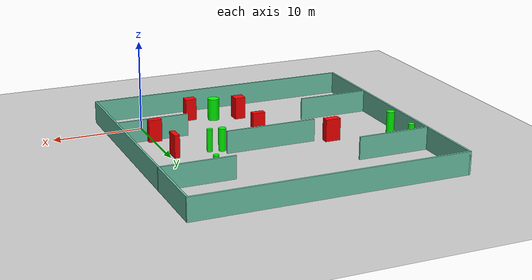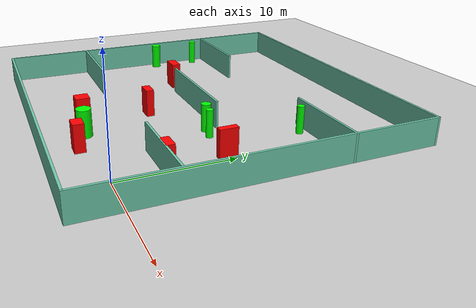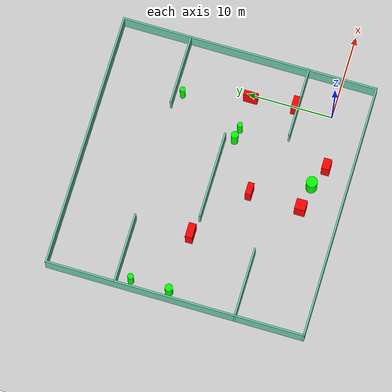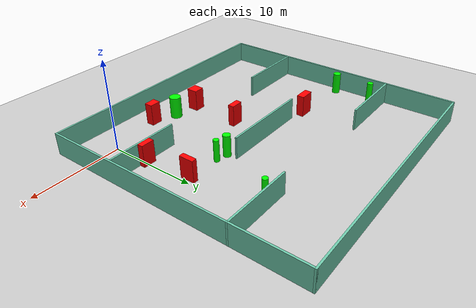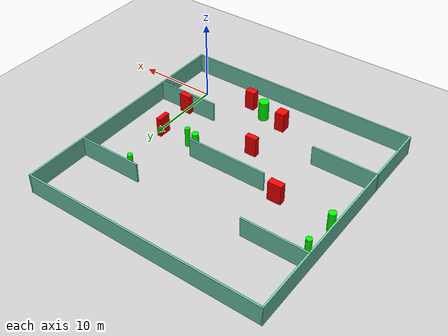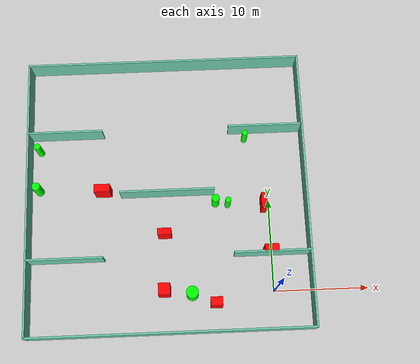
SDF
<sdf version="1.7">
 <world name="default">
  <light name="sun" type="directional">
   <pose>0 0 10 0 -0 0</pose>
   <diffuse>0.8 0.8 0.8 1</diffuse>
   <specular>0.2 0.2 0.2 1</specular>
   <attenuation>
    <range>1000</range>
    <constant>0.9</constant>
    <linear>0.01</linear>
    <quadratic>0.001</quadratic>
   </attenuation>
   <direction>-0.5 0.1 -0.9</direction>
   <spot><inner_angle>0</inner_angle><outer_angle>0</outer_angle><falloff>0</falloff></spot>
  </light>
  <model name="ground_plane">
   <static>1</static>
   <link name="link">
    <collision name="collision">
     <geometry><plane><normal>0 0 1</normal><size>100 100</size></plane></geometry>
     <surface>
      <contact><collide_bitmask>65535</collide_bitmask></contact>
      <friction><ode><mu>100</mu><mu2>50</mu2></ode></friction>
     </surface>
    </collision>
    <visual name="visual">
     <cast_shadows>0</cast_shadows>
     <geometry><plane><normal>0 0 1</normal><size>100 100</size></plane></geometry>
     <material>
      <script><uri>file://media/materials/scripts/gazebo.material</uri><name>Gazebo/Grey</name></script>
     </material>
    </visual>
   </link>
  </model>
  <gravity>0 0 -9.8</gravity>
  <magnetic_field>6e-06 2.3e-05 -4.2e-05</magnetic_field>
  <atmosphere type="adiabatic"/>
  <physics type="ode">
   <max_step_size>0.001</max_step_size>
   <real_time_factor>1</real_time_factor>
   <real_time_update_rate>1000</real_time_update_rate>
  </physics>
  <scene><ambient>0.4 0.4 0.4 1</ambient><background>0.7 0.7 0.7 1</background><shadows>1</shadows></scene>
  <spherical_coordinates>
   <surface_model>EARTH_WGS84</surface_model>
   <latitude_deg>0</latitude_deg>
   <longitude_deg>0</longitude_deg>
   <elevation>0</elevation>
   <heading_deg>0</heading_deg>
  </spherical_coordinates>
  <model name="my_base_walls">
   <link name="Wall_10">
    <collision name="Wall_10_Collision">
     <geometry><box><size>8.2 0.2 2.5</size></box></geometry>
     <pose>0 0 1.25 0 -0 0</pose>
    </collision>
    <visual name="Wall_10_Visual">
     <pose>0 0 1.25 0 -0 0</pose>
     <geometry><box><size>8.2 0.2 2.5</size></box></geometry>
     <material>
      <script><uri>file://media/materials/scripts/gazebo.material</uri><name>Gazebo/Grey</name></script>
      <ambient>0.435294 0.796078 0.67451 1</ambient>
     </material>
     <meta><layer>0</layer></meta>
    </visual>
    <pose>-11 -7 0 0 -0 0</pose>
   </link>
   <link name="Wall_12">
    <collision name="Wall_12_Collision">
     <geometry><box><size>8.2 0.2 2.5</size></box></geometry>
     <pose>0 0 1.25 0 -0 0</pose>
    </collision>
    <visual name="Wall_12_Visual">
     <pose>0 0 1.25 0 -0 0</pose>
     <geometry><box><size>8.2 0.2 2.5</size></box></geometry>
     <material>
      <script><uri>file://media/materials/scripts/gazebo.material</uri><name>Gazebo/Grey</name></script>
      <ambient>0.435294 0.796078 0.67451 1</ambient>
     </material>
     <meta><layer>0</layer></meta>
    </visual>
    <pose>-11 7 0 0 -0 0</pose>
   </link>
   <link name="Wall_14">
    <collision name="Wall_14_Collision">
     <geometry><box><size>8.2 0.2 2.5</size></box></geometry>
     <pose>0 0 1.25 0 -0 0</pose>
    </collision>
    <visual name="Wall_14_Visual">
     <pose>0 0 1.25 0 -0 0</pose>
     <geometry><box><size>8.2 0.2 2.5</size></box></geometry>
     <material>
      <script><uri>file://media/materials/scripts/gazebo.material</uri><name>Gazebo/Grey</name></script>
      <ambient>0.435294 0.796078 0.67451 1</ambient>
     </material>
     <meta><layer>0</layer></meta>
    </visual>
    <pose>11 7 0 0 -0 3.14159</pose>
   </link>
   <link name="Wall_16">
    <collision name="Wall_16_Collision">
     <geometry><box><size>10.2 0.2 2.5</size></box></geometry>
     <pose>0 0 1.25 0 -0 0</pose>
    </collision>
    <visual name="Wall_16_Visual">
     <pose>0 0 1.25 0 -0 0</pose>
     <geometry><box><size>10.2 0.2 2.5</size></box></geometry>
     <material>
      <script><uri>file://media/materials/scripts/gazebo.material</uri><name>Gazebo/Grey</name></script>
      <ambient>0.435294 0.796078 0.67451 1</ambient>
     </material>
     <meta><layer>0</layer></meta>
    </visual>
    <pose>0 0 0 0 -0 3.14159</pose>
   </link>
   <link name="Wall_2">
    <collision name="Wall_2_Collision">
     <geometry><box><size>30.2 0.2 2.5</size></box></geometry>
     <pose>0 0 1.25 0 -0 0</pose>
    </collision>
    <visual name="Wall_2_Visual">
     <pose>0 0 1.25 0 -0 0</pose>
     <geometry><box><size>30.2 0.2 2.5</size></box></geometry>
     <material>
      <script><uri>file://media/materials/scripts/gazebo.material</uri><name>Gazebo/Grey</name></script>
      <ambient>0.435294 0.796078 0.67451 1</ambient>
     </material>
     <meta><layer>0</layer></meta>
    </visual>
    <pose>0 -15 0 0 -0 3.14159</pose>
   </link>
   <link name="Wall_3">
    <collision name="Wall_3_Collision">
     <geometry><box><size>30.2 0.2 2.5</size></box></geometry>
     <pose>0 0 1.25 0 -0 0</pose>
    </collision>
    <visual name="Wall_3_Visual">
     <pose>0 0 1.25 0 -0 0</pose>
     <geometry><box><size>30.2 0.2 2.5</size></box></geometry>
     <material>
      <script><uri>file://media/materials/scripts/gazebo.material</uri><name>Gazebo/Grey</name></script>
      <ambient>0.435294 0.796078 0.67451 1</ambient>
     </material>
     <meta><layer>0</layer></meta>
    </visual>
    <pose>-15 0 0 0 -0 1.5708</pose>
   </link>
   <link name="Wall_4">
    <collision name="Wall_4_Collision">
     <geometry><box><size>30.2 0.2 2.5</size></box></geometry>
     <pose>0 0 1.25 0 -0 0</pose>
    </collision>
    <visual name="Wall_4_Visual">
     <pose>0 0 1.25 0 -0 0</pose>
     <geometry><box><size>30.2 0.2 2.5</size></box></geometry>
     <material>
      <script><uri>file://media/materials/scripts/gazebo.material</uri><name>Gazebo/Grey</name></script>
      <ambient>0.435294 0.796078 0.67451 1</ambient>
     </material>
     <meta><layer>0</layer></meta>
    </visual>
    <pose>0 15 0 0 -0 0</pose>
   </link>
   <link name="Wall_6">
    <collision name="Wall_6_Collision">
     <geometry><box><size>30.2 0.2 2.5</size></box></geometry>
     <pose>0 0 1.25 0 -0 0</pose>
    </collision>
    <visual name="Wall_6_Visual">
     <pose>0 0 1.25 0 -0 0</pose>
     <geometry><box><size>30.2 0.2 2.5</size></box></geometry>
     <material>
      <script><uri>file://media/materials/scripts/gazebo.material</uri><name>Gazebo/Grey</name></script>
      <ambient>0.435294 0.796078 0.67451 1</ambient>
     </material>
     <meta><layer>0</layer></meta>
    </visual>
    <pose>15 0 0 0 -0 1.5708</pose>
   </link>
   <link name="Wall_8">
    <collision name="Wall_8_Collision">
     <geometry><box><size>8.2 0.2 2.5</size></box></geometry>
     <pose>0 0 1.25 0 -0 0</pose>
    </collision>
    <visual name="Wall_8_Visual">
     <pose>0 0 1.25 0 -0 0</pose>
     <geometry><box><size>8.2 0.2 2.5</size></box></geometry>
     <material>
      <script><uri>file://media/materials/scripts/gazebo.material</uri><name>Gazebo/Grey</name></script>
      <ambient>0.435294 0.796078 0.67451 1</ambient>
     </material>
     <meta><layer>0</layer></meta>
    </visual>
    <pose>11 -7 0 0 -0 3.14159</pose>
   </link>
   <static>1</static>
   <pose>-11 11 0 0 -0 0</pose>
  </model>
  <model name="cylinder1">
   <static>1</static>
   <link name="link">
    <inertial>
     <mass>1</mass>
     <inertia><ixx>0.5</ixx><ixy>0</ixy><ixz>0</ixz><iyy>0.5</iyy><iyz>0</iyz><izz>1</izz></inertia>
    </inertial>
    <collision name="collision">
     <geometry><cylinder><radius>0.3506533673781411</radius><length>2.5</length></cylinder></geometry>
    </collision>
    <visual name="visual">
     <geometry><cylinder><radius>0.3506533673781411</radius><length>2.5</length></cylinder></geometry>
     <material>
      <ambient>0 1 0 1</ambient>
      <diffuse>0 1 0 1</diffuse>
      <specular>0.1 0.1 0.1 1</specular>
      <emissive>0 0 0 0</emissive>
     </material>
    </visual>
   </link>
   <pose>-24.969623150735863 16.42546734789284 1.25 0 0 0</pose>
  </model>
  <model name="cylinder2">
   <static>1</static>
   <link name="link">
    <inertial>
     <mass>1</mass>
     <inertia><ixx>0.5</ixx><ixy>0</ixy><ixz>0</ixz><iyy>0.5</iyy><iyz>0</iyz><izz>1</izz></inertia>
    </inertial>
    <collision name="collision">
     <geometry><cylinder><radius>0.44974935875868516</radius><length>2.5</length></cylinder></geometry>
    </collision>
    <visual name="visual">
     <geometry><cylinder><radius>0.44974935875868516</radius><length>2.5</length></cylinder></geometry>
     <material>
      <ambient>0 1 0 1</ambient>
      <diffuse>0 1 0 1</diffuse>
      <specular>0.1 0.1 0.1 1</specular>
      <emissive>0 0 0 0</emissive>
     </material>
    </visual>
   </link>
   <pose>-25.025423166021167 11.943777501756585 1.25 0 0 0</pose>
  </model>
  <model name="cylinder3">
   <static>1</static>
   <link name="link">
    <inertial>
     <mass>1</mass>
     <inertia><ixx>0.5</ixx><ixy>0</ixy><ixz>0</ixz><iyy>0.5</iyy><iyz>0</iyz><izz>1</izz></inertia>
    </inertial>
    <collision name="collision">
     <geometry><cylinder><radius>0.31242421389936575</radius><length>2.5</length></cylinder></geometry>
    </collision>
    <visual name="visual">
     <geometry><cylinder><radius>0.31242421389936575</radius><length>2.5</length></cylinder></geometry>
     <material>
      <ambient>0 1 0 1</ambient>
      <diffuse>0 1 0 1</diffuse>
      <specular>0.1 0.1 0.1 1</specular>
      <emissive>0 0 0 0</emissive>
     </material>
    </visual>
   </link>
   <pose>-4.4866089253632495 9.661375436876355 1.25 0 0 0</pose>
  </model>
  <model name="cylinder4">
   <static>1</static>
   <link name="link">
    <inertial>
     <mass>1</mass>
     <inertia><ixx>0.5</ixx><ixy>0</ixy><ixz>0</ixz><iyy>0.5</iyy><iyz>0</iyz><izz>1</izz></inertia>
    </inertial>
    <collision name="collision">
     <geometry><cylinder><radius>0.6482530465782862</radius><length>2.5</length></cylinder></geometry>
    </collision>
    <visual name="visual">
     <geometry><cylinder><radius>0.6482530465782862</radius><length>2.5</length></cylinder></geometry>
     <material>
      <ambient>0 1 0 1</ambient>
      <diffuse>0 1 0 1</diffuse>
      <specular>0.1 0.1 0.1 1</specular>
      <emissive>0 0 0 0</emissive>
     </material>
    </visual>
   </link>
   <pose>-8.67445679680367 0.0010168665704108903 1.25 0 0 0</pose>
  </model>
  <model name="cylinder5">
   <static>1</static>
   <link name="link">
    <inertial>
     <mass>1</mass>
     <inertia><ixx>0.5</ixx><ixy>0</ixy><ixz>0</ixz><iyy>0.5</iyy><iyz>0</iyz><izz>1</izz></inertia>
    </inertial>
    <collision name="collision">
     <geometry><cylinder><radius>0.31379874981062517</radius><length>2.5</length></cylinder></geometry>
    </collision>
    <visual name="visual">
     <geometry><cylinder><radius>0.31379874981062517</radius><length>2.5</length></cylinder></geometry>
     <material>
      <ambient>0 1 0 1</ambient>
      <diffuse>0 1 0 1</diffuse>
      <specular>0.1 0.1 0.1 1</specular>
      <emissive>0 0 0 0</emissive>
     </material>
    </visual>
   </link>
   <pose>-2.2987501894259026 17.126002534451494 1.25 0 0 0</pose>
  </model>
  <model name="cylinder6">
   <static>1</static>
   <link name="link">
    <inertial>
     <mass>1</mass>
     <inertia><ixx>0.5</ixx><ixy>0</ixy><ixz>0</ixz><iyy>0.5</iyy><iyz>0</iyz><izz>1</izz></inertia>
    </inertial>
    <collision name="collision">
     <geometry><cylinder><radius>0.42173483120113703</radius><length>2.5</length></cylinder></geometry>
    </collision>
    <visual name="visual">
     <geometry><cylinder><radius>0.42173483120113703</radius><length>2.5</length></cylinder></geometry>
     <material>
      <ambient>0 1 0 1</ambient>
      <diffuse>0 1 0 1</diffuse>
      <specular>0.1 0.1 0.1 1</specular>
      <emissive>0 0 0 0</emissive>
     </material>
    </visual>
   </link>
   <pose>-5.821436615541963 9.903199097692223 1.25 0 0 0</pose>
  </model>
  <model name="box1">
   <static>1</static>
   <link name="link">
    <inertial>
     <mass>1</mass>
     <inertia><ixx>0.083</ixx><ixy>0</ixy><ixz>0</ixz><iyy>0.083</iyy><iyz>0</iyz><izz>0.083</izz></inertia>
    </inertial>
    <collision name="collision">
     <geometry><box><size>1.2680780042964044 0.9420139145950812 2.5</size></box></geometry>
    </collision>
    <visual name="visual">
     <geometry><box><size>1.2680780042964044 0.9420139145950812 2.5</size></box></geometry>
     <material>
      <ambient>1 0 0 1</ambient>
      <diffuse>1 0 0 1</diffuse>
      <specular>0.1 0.1 0.1 1</specular>
      <emissive>0 0 0 0</emissive>
     </material>
    </visual>
    <sensor name="my_contact" type="contact">
     <contact><collision>box_collision</collision><topic>__default_topic__</topic></contact>
    </sensor>
   </link>
   <pose>-6.172804141842738 -1.0324246596630107 1.25 0 0 0</pose>
  </model>
  <model name="box2">
   <static>1</static>
   <link name="link">
    <inertial>
     <mass>1</mass>
     <inertia><ixx>0.083</ixx><ixy>0</ixy><ixz>0</ixz><iyy>0.083</iyy><iyz>0</iyz><izz>0.083</izz></inertia>
    </inertial>
    <collision name="collision">
     <geometry><box><size>1.7120021309752804 0.8437351680438929 2.5</size></box></geometry>
    </collision>
    <visual name="visual">
     <geometry><box><size>1.7120021309752804 0.8437351680438929 2.5</size></box></geometry>
     <material>
      <ambient>1 0 0 1</ambient>
      <diffuse>1 0 0 1</diffuse>
      <specular>0.1 0.1 0.1 1</specular>
      <emissive>0 0 0 0</emissive>
     </material>
    </visual>
    <sensor name="my_contact" type="contact">
     <contact><collision>box_collision</collision><topic>__default_topic__</topic></contact>
    </sensor>
   </link>
   <pose>-17.96773863033272 11.496551464284721 1.25 0 0 0</pose>
  </model>
  <model name="box3">
   <static>1</static>
   <link name="link">
    <inertial>
     <mass>1</mass>
     <inertia><ixx>0.083</ixx><ixy>0</ixy><ixz>0</ixz><iyy>0.083</iyy><iyz>0</iyz><izz>0.083</izz></inertia>
    </inertial>
    <collision name="collision">
     <geometry><box><size>0.5783597087337761 1.6406359875202279 2.5</size></box></geometry>
    </collision>
    <visual name="visual">
     <geometry><box><size>0.5783597087337761 1.6406359875202279 2.5</size></box></geometry>
     <material>
      <ambient>1 0 0 1</ambient>
      <diffuse>1 0 0 1</diffuse>
      <specular>0.1 0.1 0.1 1</specular>
      <emissive>0 0 0 0</emissive>
     </material>
    </visual>
    <sensor name="my_contact" type="contact">
     <contact><collision>box_collision</collision><topic>__default_topic__</topic></contact>
    </sensor>
   </link>
   <pose>-0.6370220876715109 9.496184569451156 1.25 0 0 0</pose>
  </model>
  <model name="box4">
   <static>1</static>
   <link name="link">
    <inertial>
     <mass>1</mass>
     <inertia><ixx>0.083</ixx><ixy>0</ixy><ixz>0</ixz><iyy>0.083</iyy><iyz>0</iyz><izz>0.083</izz></inertia>
    </inertial>
    <collision name="collision">
     <geometry><box><size>1.2379903955257445 1.243445702512371 2.5</size></box></geometry>
    </collision>
    <visual name="visual">
     <geometry><box><size>1.2379903955257445 1.243445702512371 2.5</size></box></geometry>
     <material>
      <ambient>1 0 0 1</ambient>
      <diffuse>1 0 0 1</diffuse>
      <specular>0.1 0.1 0.1 1</specular>
      <emissive>0 0 0 0</emissive>
     </material>
    </visual>
    <sensor name="my_contact" type="contact">
     <contact><collision>box_collision</collision><topic>__default_topic__</topic></contact>
    </sensor>
   </link>
   <pose>-11.580792207719487 0.451524313884176 1.25 0 0 0</pose>
  </model>
  <model name="box5">
   <static>1</static>
   <link name="link">
    <inertial>
     <mass>1</mass>
     <inertia><ixx>0.083</ixx><ixy>0</ixy><ixz>0</ixz><iyy>0.083</iyy><iyz>0</iyz><izz>0.083</izz></inertia>
    </inertial>
    <collision name="collision">
     <geometry><box><size>1.4816762598998001 0.7183494571880157 2.5</size></box></geometry>
    </collision>
    <visual name="visual">
     <geometry><box><size>1.4816762598998001 0.7183494571880157 2.5</size></box></geometry>
     <material>
      <ambient>1 0 0 1</ambient>
      <diffuse>1 0 0 1</diffuse>
      <specular>0.1 0.1 0.1 1</specular>
      <emissive>0 0 0 0</emissive>
     </material>
    </visual>
    <sensor name="my_contact" type="contact">
     <contact><collision>box_collision</collision><topic>__default_topic__</topic></contact>
    </sensor>
   </link>
   <pose>-0.12052219995840474 4.3721598861292 1.25 0 0 0</pose>
  </model>
  <model name="box6">
   <static>1</static>
   <link name="link">
    <inertial>
     <mass>1</mass>
     <inertia><ixx>0.083</ixx><ixy>0</ixy><ixz>0</ixz><iyy>0.083</iyy><iyz>0</iyz><izz>0.083</izz></inertia>
    </inertial>
    <collision name="collision">
     <geometry><box><size>1.4342464992837174 0.7031002183846589 2.5</size></box></geometry>
    </collision>
    <visual name="visual">
     <geometry><box><size>1.4342464992837174 0.7031002183846589 2.5</size></box></geometry>
     <material>
      <ambient>1 0 0 1</ambient>
      <diffuse>1 0 0 1</diffuse>
      <specular>0.1 0.1 0.1 1</specular>
      <emissive>0 0 0 0</emissive>
     </material>
    </visual>
    <sensor name="my_contact" type="contact">
     <contact><collision>box_collision</collision><topic>__default_topic__</topic></contact>
    </sensor>
   </link>
   <pose>-11.405925636013743 6.512125518401064 1.25 0 0 0</pose>
  </model>
 </world>
</sdf>
